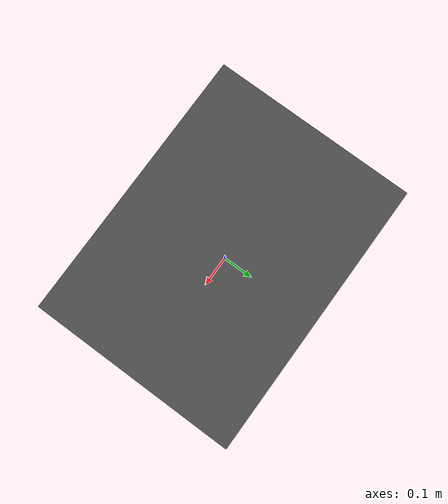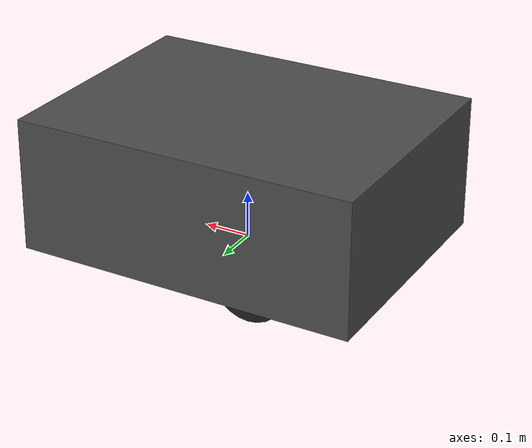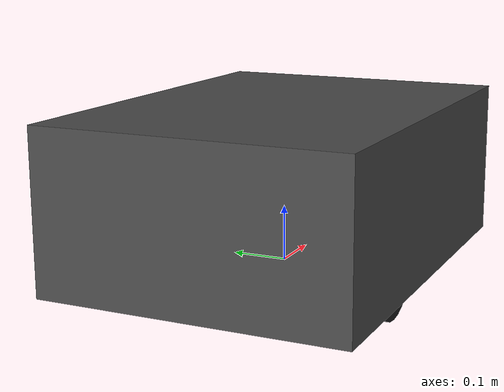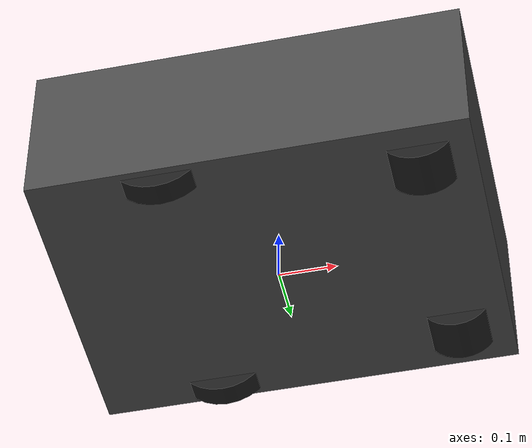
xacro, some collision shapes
<?xml version="1.0"?>
<robot name="boxer" xmlns:xacro="http://www.ros.org/wiki/xacro">

    <xacro:include filename="$(find gazebo_ros2_control_demos)/urdf/materials.xacro.urdf"/>

  <!-- The robot's origin, center-bottom of the main chassis -->
    <link name="base_link" />

    <!-- The main chassis for the robot -->
    <link name="chassis_link">
        <inertial>
        <!-- TODO inertial data copied from old boxer, may need fixing -->
        <origin xyz="0 0 0.07" rpy="0 0 0" />
        <mass value="51"/>
        <inertia ixx="2.3" ixy="0" ixz="0" iyy="3.35" iyz="0.00" izz="1.22"/>
        </inertial>
        <visual>
        <origin xyz="0 0 0" rpy="0 0 0" />
        <geometry>
            <mesh filename="file://$(find gazebo_ros2_control_demos)/meshes/boxer24_no_sensors.stl" scale="0.001 0.001 0.001" />
        </geometry>
        <material name="Boxer_DarkGrey" />
        </visual>
        <collision>
        <geometry>
            <!-- For simplicity, use a box collider instead of the pretty mesh -->
            <box size="0.74143 0.55093 0.2884" rpy="0 0 0" />
        </geometry>
        <origin xyz="0 0 0.1442" rpy="0 0 0" />
        </collision>
    </link>

    <joint name="chassis_joint" type="fixed">
        <parent link="base_link" />
        <child link="chassis_link" />
        <origin xyz="0 0 0" rpy="0 0 0" />
    </joint>

    <gazebo reference="chassis_link">
        <visual>
        <material>Gazebo/Orange</material>
        </visual>
    </gazebo>

    <link name="top_plate_link" />

    <joint name="top_plate_joint" type="fixed">
        <parent link="chassis_link" />
        <child link="top_plate_link" />
        <origin xyz="0 0 0.2884" rpy="0 0 0" />
    </joint>

    <link name="mid_mount" />

    <joint name="mid_mount_joint" type="fixed">
        <parent link="top_plate_link" />
        <child link="mid_mount" />
        <origin xyz="0 0 0" rpy="0 0 0" />
    </joint>

    <!-- The wheels all rotate around their X axis, so for simplicity include a rotated parent link -->
    <link name="drive_train_link" />

    <joint name="drive_train_joint" type="fixed">
        <parent link="chassis_link" />
        <child link="drive_train_link" />
        <origin xyz="0 0 0" rpy="0 0 ${pi/2}" />
    </joint>

    <xacro:macro name="rotacastor" params="name parent *origin">
        <link name="${name}_link">
        <inertial>
            <origin xyz="0 0 0.0005" rpy="0 0 0"/>
            <mass value="100"/>
            <inertia ixx="0.2" ixy="0" ixz="0" iyy="0.2" iyz="0" izz="0.2"/>
        </inertial>
        <visual>
            <origin xyz="0 0 0" rpy="0 1.5708 0" />
            <geometry>
            <cylinder radius="0.0625" length="0.0827" />
            </geometry>
            <material name="Boxer_Black"/>
        </visual>
        <collision>
            <origin xyz="0 0 0.0005" rpy="0 1.5708 0" />
            <geometry>
            <cylinder radius="0.0625" length="0.0827" />
            </geometry>
        </collision>
        </link>

        <joint name="${name}_joint" type="fixed">
        <xacro:insert_block name="origin" />
        <parent link="${parent}" />
        <child link="${name}_link" />
        <axis  xyz="1 0 0" />
        <dynamics damping="0.05" />
        </joint>

        <gazebo reference="${name}_link">
        <material>Gazebo/DarkGrey</material>
        <selfCollide>false</selfCollide>
        <!-- For castors, we need high PID values to avoid slippage -->
        <kp value="10000000.0" />
        <kd value="10000.0" />
        <!-- Castors will slide freely to allow turning -->
        <mu1 value="0.0"/>
        <mu2 value="0.0"/>
        <minDepth>0.000</minDepth>
        </gazebo>
    </xacro:macro>

    <xacro:macro name="drive_wheel" params="name parent *origin">
        <link name="${name}_link">
        <inertial>
            <origin xyz="0 0 0" rpy="0 0 0"/>
            <mass value="100"/>
            <inertia ixx="0.2" ixy="0" ixz="0" iyy="0.2" iyz="0" izz="0.2"/>    <!-- ixx =0,1669 iyy= 0,1669   0.32 -->
        </inertial>
        <visual>
            <origin xyz="0 0 0" rpy="0 1.5708 0" />
            <geometry>
            <cylinder radius="0.080" length="0.04" />
            </geometry>
            <material name="Boxer_Black"/>
        </visual>
        <collision>
            <origin xyz="0 0 0" rpy="0 1.5708 0" />
            <geometry>
            <cylinder radius="0.080" length="0.04" />
            </geometry>
        </collision>
        </link>

        <joint name="${name}_joint" type="continuous">
        <xacro:insert_block name="origin" />
        <parent link="${parent}" />
        <child link="${name}_link" />
        <axis xyz="1 0 0" />
        <dynamics damping="0.05" />   <!--damping = 1.0-->
        </joint>

        <gazebo reference="${name}_link">
        <material>Gazebo/Black</material>
        <selfCollide>false</selfCollide>
        <!-- For wheels, we need high PID values to avoid slippage -->
        <kp value="100000000.0" />                 <!-- any value below this causes wheels to sink below the plane -->
        <kd value="10000.0" />
        <!-- Wheels have friction to prevent slippage -->
        <!-- default mu1 and mu2 value="0.1" -->
        <mu1 value="0.1"/>
        <mu2 value="0.1"/>
        <minDepth>0.0001</minDepth>
        </gazebo>
    </xacro:macro>

    <xacro:rotacastor name="rotacastor_right" parent="drive_train_link">
        <origin xyz="-0.1937 -0.2792 0.0347" rpy="0 0 0" />
    </xacro:rotacastor>
    <xacro:rotacastor name="rotacastor_left" parent="drive_train_link">
        <origin xyz="0.1937 -0.2792 0.0347" rpy="0 0 0" />
    </xacro:rotacastor>

    <xacro:drive_wheel name="wheel_right" parent="drive_train_link">
        <origin xyz="-0.2436 0.1503 0.0526" rpy="0 0 0" />
    </xacro:drive_wheel>
    <xacro:drive_wheel name="wheel_left" parent="drive_train_link">
        <origin xyz="0.2436 0.1503 0.0526" rpy="0 0 0" />
    </xacro:drive_wheel>

</robot>
